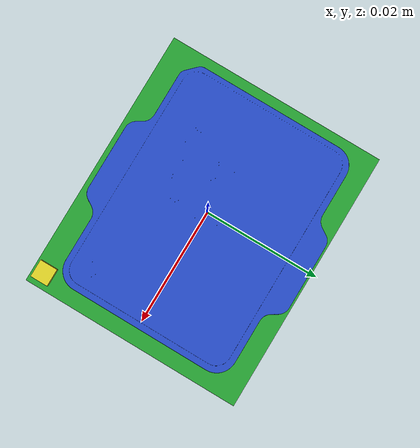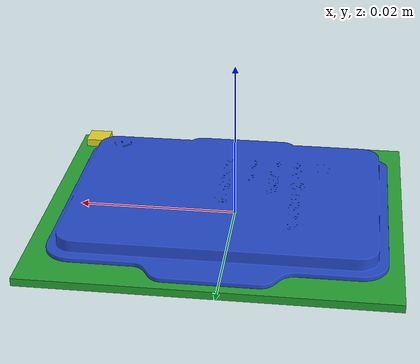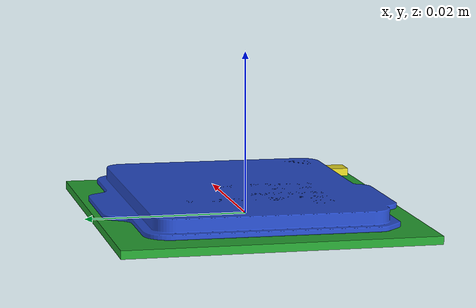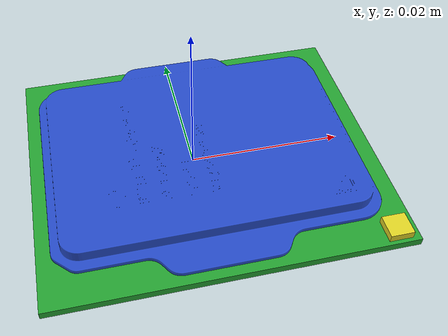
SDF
<?xml version='1.0'?>
<sdf version='1.7'>
  <model name='12gen'>
    <link name='link_2'>
      <inertial>
        <mass>0.1</mass>
        <inertia>
          <ixx>0.166667</ixx>
          <ixy>0</ixy>
          <ixz>0</ixz>
          <iyy>0.166667</iyy>
          <iyz>0</iyz>
          <izz>0.166667</izz>
        </inertia>
        <pose>0 0 0 0 -0 0</pose>
      </inertial>
      <pose>-0.002104 -0.001025 0.002488 -3.13786 0 0</pose>
      <gravity>1</gravity>
      <self_collide>0</self_collide>
      <kinematic>0</kinematic>
      <enable_wind>0</enable_wind>
      <visual name='visual'>
        <pose>0 0 0 0 -0 0</pose>
        <geometry>
          <mesh>
            <uri>model://12gen/meshes/top_cover.obj</uri>
            <scale>1 1 1</scale>
          </mesh>
        </geometry>
        <material>
          <script><name>Gazebo/BlueGlow</name></script>
        </material>

        <transparency>0</transparency>
        <cast_shadows>1</cast_shadows>
      </visual>
      <collision name='collision'>
        <laser_retro>0</laser_retro>
        <max_contacts>10</max_contacts>
        <pose>0 0 0 0 -0 0</pose>
        <geometry>
          <mesh>
            <uri>model://12gen/meshes/top_cover.obj</uri>
            <scale>1 1 1</scale>
          </mesh>
        </geometry>
        <surface>
          <friction>
            <ode>
              <mu>1</mu>
              <mu2>1</mu2>
              <fdir1>0 0 0</fdir1>
              <slip1>0</slip1>
              <slip2>0</slip2>
            </ode>
            <torsional>
              <coefficient>1</coefficient>
              <patch_radius>0</patch_radius>
              <surface_radius>0</surface_radius>
              <use_patch_radius>1</use_patch_radius>
              <ode>
                <slip>0</slip>
              </ode>
            </torsional>
          </friction>
          <bounce>
            <restitution_coefficient>0</restitution_coefficient>
            <threshold>1e+06</threshold>
          </bounce>
          <contact>
            <collide_without_contact>0</collide_without_contact>
            <collide_without_contact_bitmask>1</collide_without_contact_bitmask>
            <collide_bitmask>1</collide_bitmask>
            <ode>
              <soft_cfm>0</soft_cfm>
              <soft_erp>0.2</soft_erp>
              <kp>1e+13</kp>
              <kd>1</kd>
              <max_vel>0.01</max_vel>
              <min_depth>0</min_depth>
            </ode>
            <bullet>
              <split_impulse>1</split_impulse>
              <split_impulse_penetration_threshold>-0.01</split_impulse_penetration_threshold>
              <soft_cfm>0</soft_cfm>
              <soft_erp>0.2</soft_erp>
              <kp>1e+13</kp>
              <kd>1</kd>
            </bullet>
          </contact>
        </surface>
      </collision>
    </link>
    <link name='link_7'>
      <inertial>
        <mass>0.1</mass>
        <inertia>
          <ixx>0.16667</ixx>
          <ixy>0</ixy>
          <ixz>0</ixz>
          <iyy>0.166667</iyy>
          <iyz>0</iyz>
          <izz>0.166667</izz>
        </inertia>
        <pose>0 0 0 0 -0 0</pose>
      </inertial>
      <pose>0.001339 0.001056 -0.0000101 0 -0 0</pose>
      <gravity>1</gravity>
      <self_collide>0</self_collide>
      <kinematic>0</kinematic>
      <enable_wind>0</enable_wind>
      <visual name='visual'>
        <pose>0 -0.001 0 0 0 0</pose>
        <geometry>
          <box>
            <size>0.045 0.038 0.001</size>
          </box>
        </geometry>
        <material>
          <script><name>Gazebo/Green</name></script>
        </material>
        <transparency>0</transparency>
        <cast_shadows>1</cast_shadows>
      </visual>
      <visual name="gold_tri">
        <pose>0.02 -0.018 0.001 0 0 0</pose>
        <geometry>
          <box>
            <size>0.003 0.003 0.001</size>
          </box>
        </geometry>
        <material>
          <script><name>Gazebo/Yellow</name></script>
        </material>
        <transparency>0</transparency>
        <cast_shadows>1</cast_shadows>
      </visual>
      <collision name='collision'>
        <laser_retro>0</laser_retro>
        <max_contacts>10</max_contacts>
        <pose>0 0 0 0 -0 0</pose>
        <geometry>
          <box>
            <size>0.045 0.038 0.001</size>
          </box>
        </geometry>
        <surface>
          <friction>
              <mu>0.1</mu>
              <mu2>0.1</mu2>

          </friction>
          <bounce>
            <restitution_coefficient>0.5</restitution_coefficient>
            <threshold>1e+06</threshold>
          </bounce>
          <contact>
            <collide_without_contact>0</collide_without_contact>
            <collide_without_contact_bitmask>1</collide_without_contact_bitmask>
            <collide_bitmask>1</collide_bitmask>
            <ode>
              <soft_cfm>0</soft_cfm>
              <soft_erp>0.2</soft_erp>
              <kp>1e+13</kp>
              <kd>1</kd>
              <max_vel>0.01</max_vel>
              <min_depth>0</min_depth>
            </ode>
            <bullet>
              <split_impulse>1</split_impulse>
              <split_impulse_penetration_threshold>-0.01</split_impulse_penetration_threshold>
              <soft_cfm>0</soft_cfm>
              <soft_erp>0.2</soft_erp>
              <kp>1e+13</kp>
              <kd>1</kd>
            </bullet>
          </contact>
        </surface>
      </collision>
    </link>
    <joint name='link_7_JOINT_0' type='fixed'>
      <parent>link_7</parent>
      <child>link_2</child>
      <pose>0 0 0 0 -0 0</pose>
      <physics>
        <ode>
          <limit>
            <cfm>0</cfm>
            <erp>0.2</erp>
          </limit>
          <suspension>
            <cfm>0</cfm>
            <erp>0.2</erp>
          </suspension>
        </ode>
      </physics>
    </joint>
    <static>0</static>
    <allow_auto_disable>1</allow_auto_disable>
    <gazebo reference="link_2">
     <material>Gazebo/Orange</material>
    </gazebo>
    <gazebo reference="link_7">
     <material>Gazebo/Green</material>
    </gazebo>
  </model>
</sdf>
